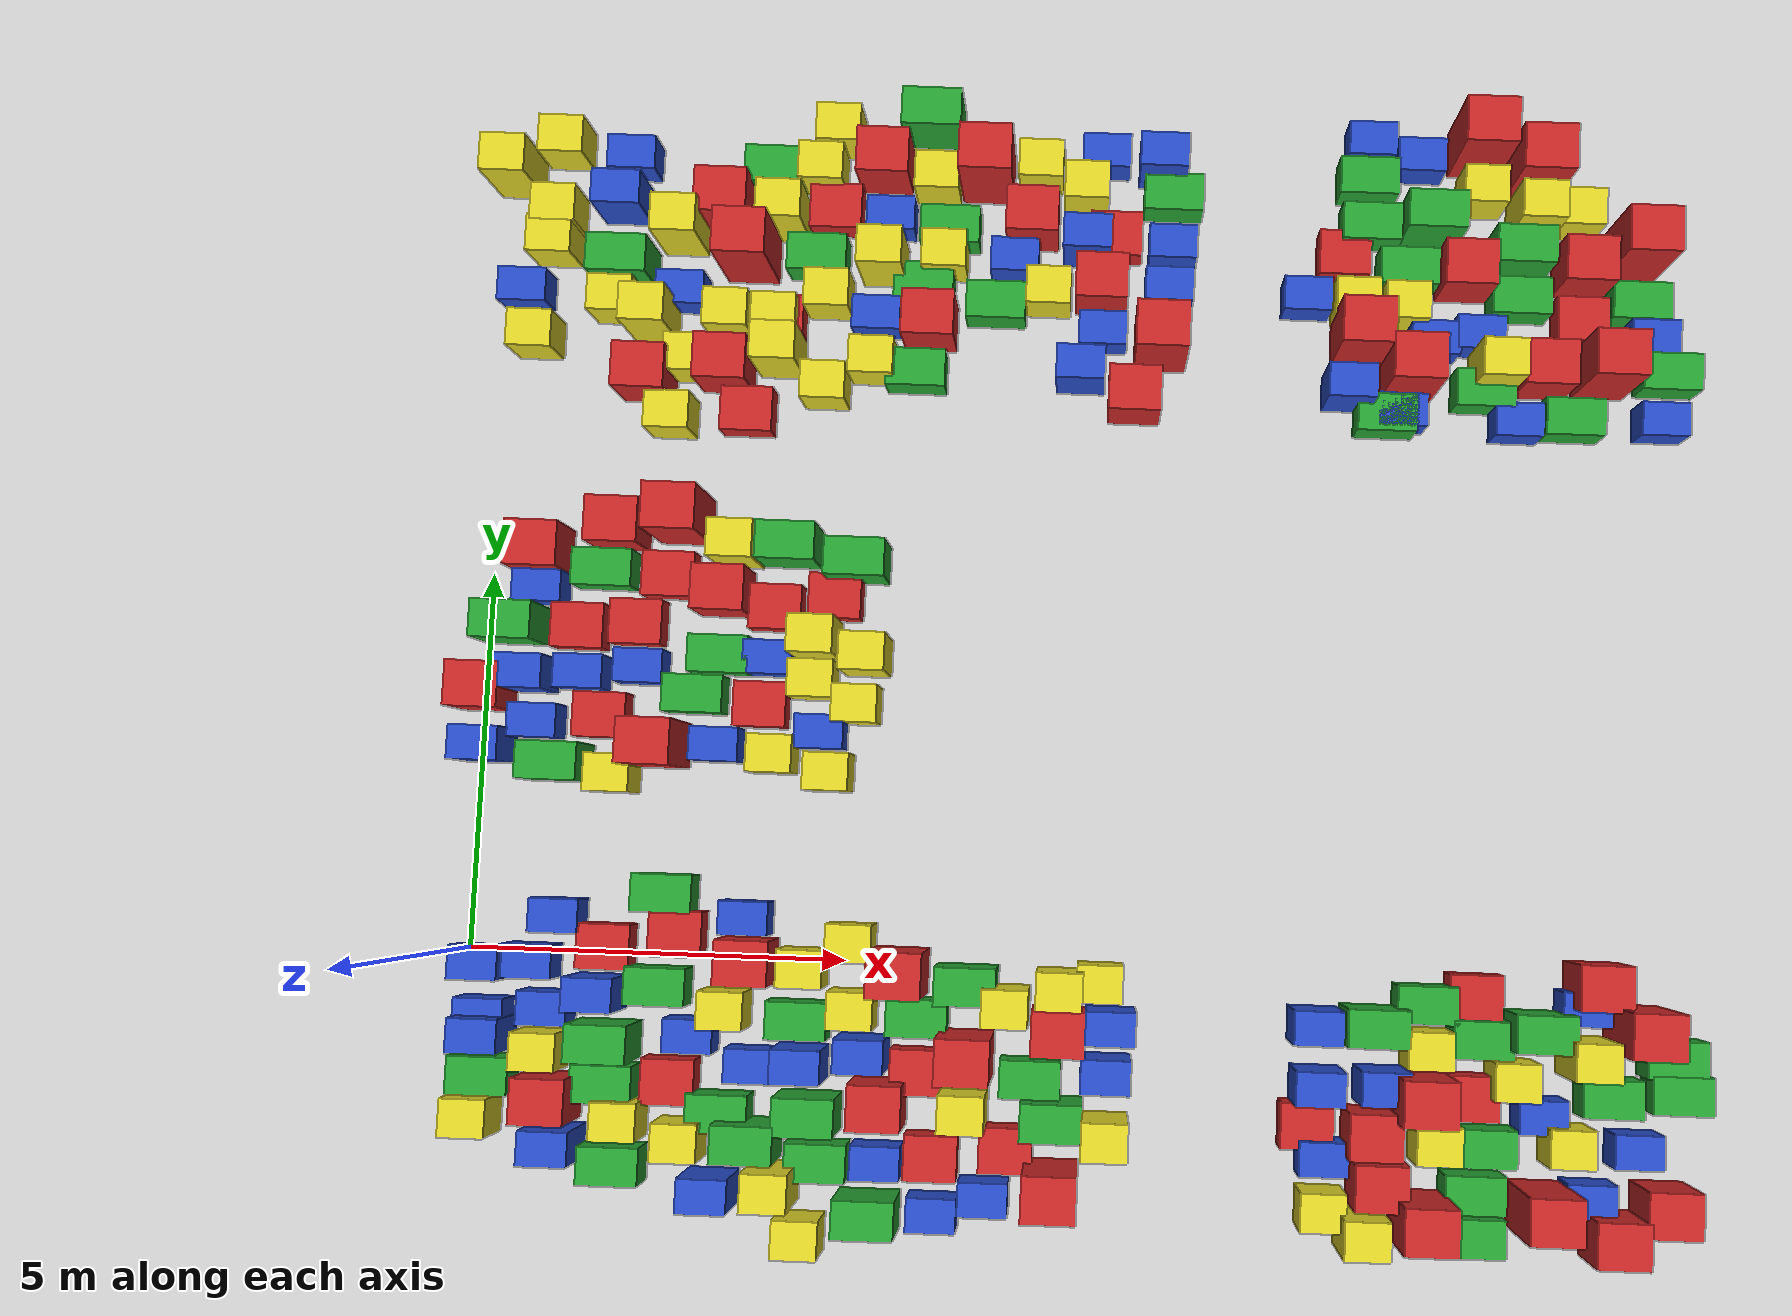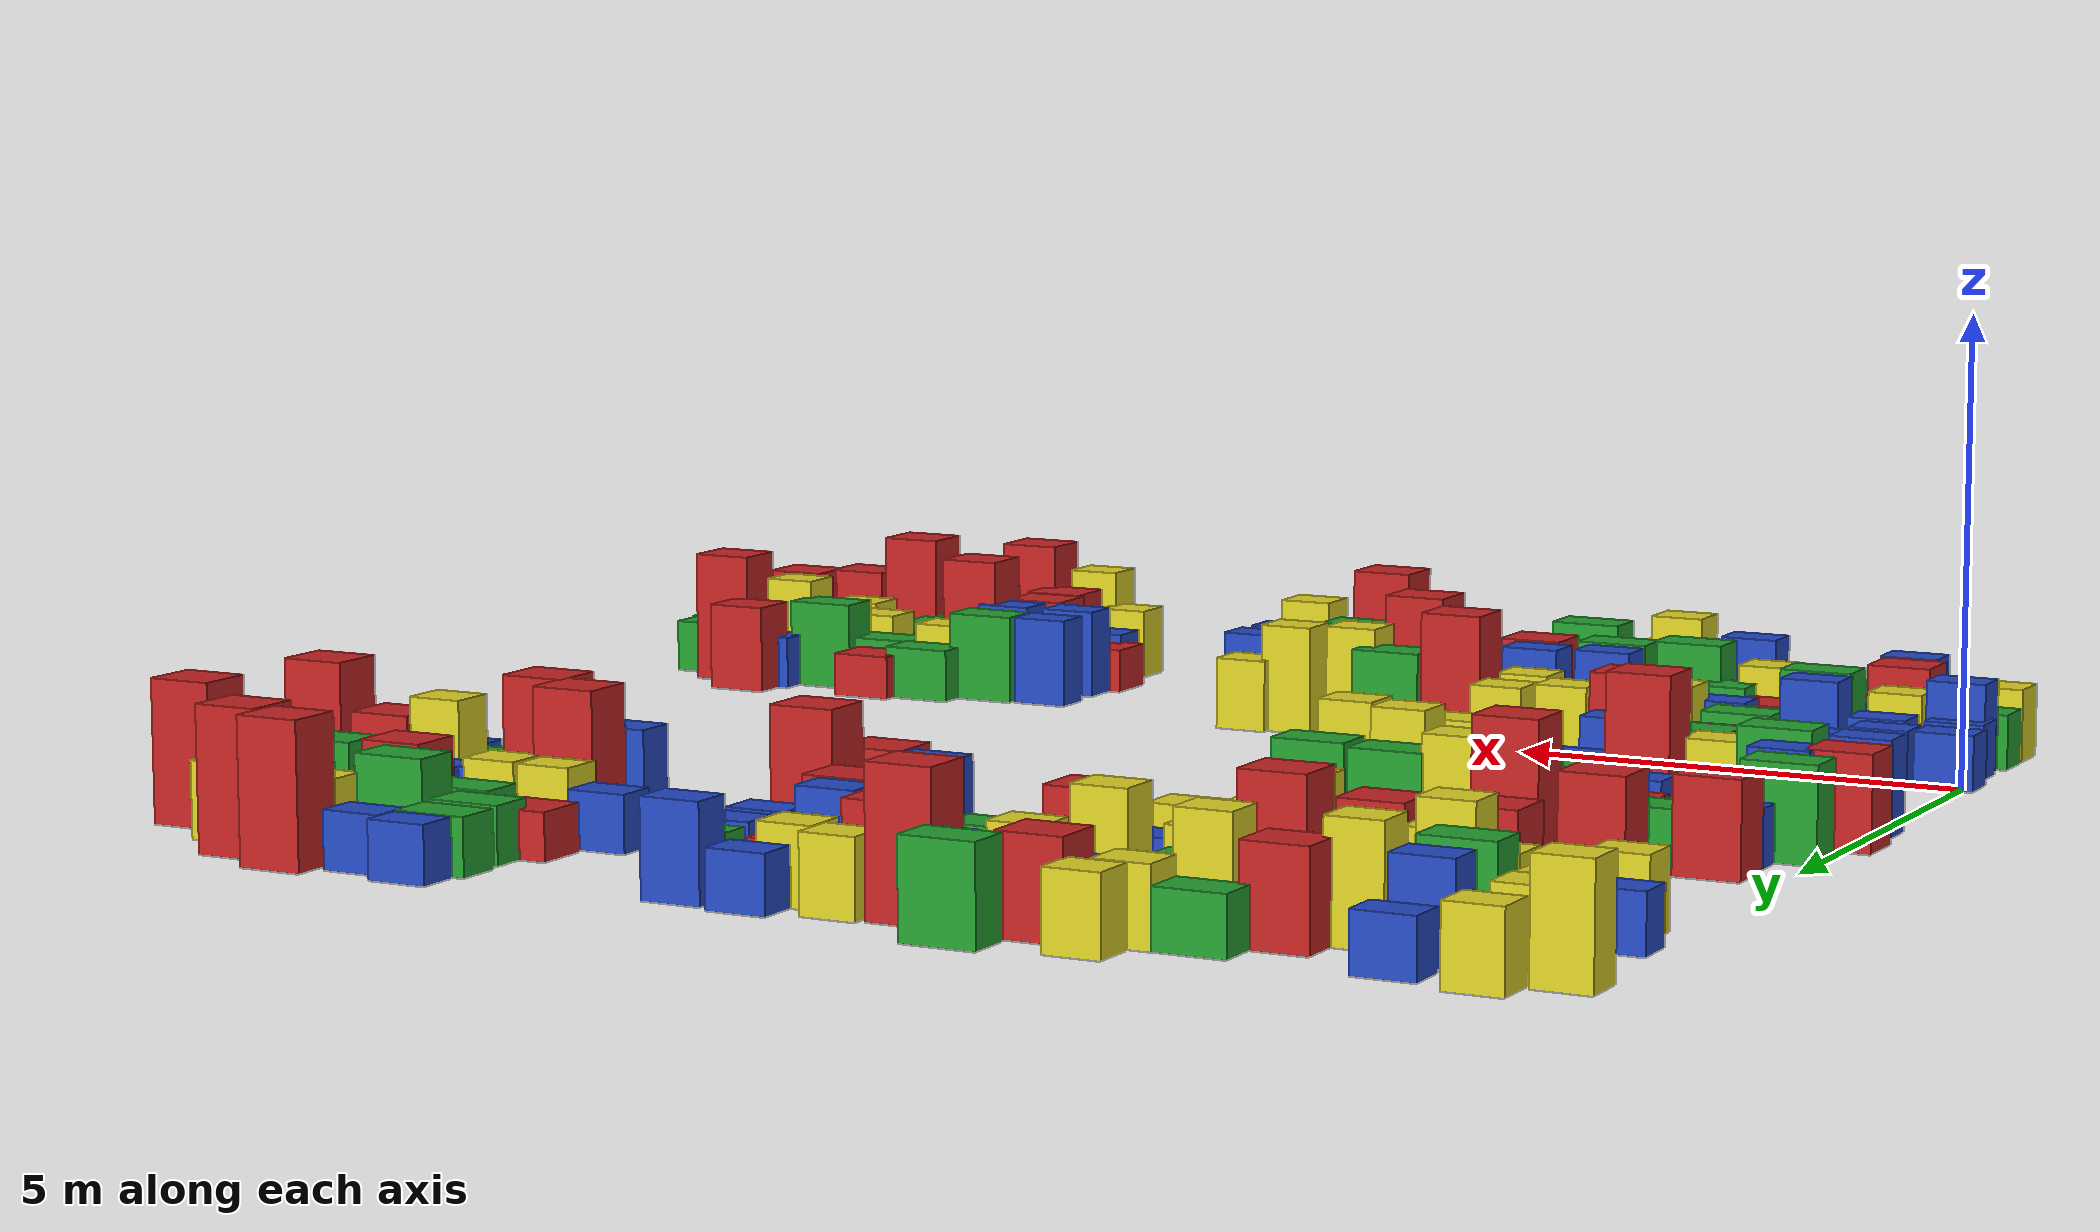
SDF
<?xml version="1.0" encoding="UTF-8"?>
<sdf version="1.4">
  <model name="baggage_group_D">
      <model name='baggage_A_0.5_0'>
        <include>
          <uri>model://baggage_A_0.5</uri>
          <pose>6.26543 -2.46376 0.249591 0 -0 0</pose>
        </include>
      </model>
      <model name='baggage_A_0.5_10'>
        <include>
          <uri>model://baggage_A_0.5</uri>
          <pose>7.2367 -2.3284 0.24962 0 -0 0</pose>
        </include>
      </model>
      <model name='baggage_A_0.5_13'>
        <include>
          <uri>model://baggage_A_0.5</uri>
          <pose>2.43636 5.05285 0.250044 0 -0 0</pose>
        </include>
      </model>
      <model name='baggage_A_0.5_14'>
        <include>
          <uri>model://baggage_A_0.5</uri>
          <pose>4.67139 4.83978 0.249865 0 -0 0</pose>
        </include>
      </model>
      <model name='baggage_A_0.5_17'>
        <include>
          <uri>model://baggage_A_0.5</uri>
          <pose>1.86196 0.098093 0.249707 0 -0 0</pose>
        </include>
      </model>
      <model name='baggage_A_0.5_19'>
        <include>
          <uri>model://baggage_A_0.5</uri>
          <pose>6.0358 -1.37193 0.249929 0 -0 0</pose>
        </include>
      </model>
      <model name='baggage_A_0.5_22'>
        <include>
          <uri>model://baggage_A_0.5</uri>
          <pose>2.04116 4.39802 0.24978 0 -0 0</pose>
        </include>
      </model>
      <model name='baggage_A_0.5_29'>
        <include>
          <uri>model://baggage_A_0.5</uri>
          <pose>2.80038 -1.61448 0.249803 0 -0 0</pose>
        </include>
      </model>
      <model name='baggage_A_0.5_33'>
        <include>
          <uri>model://baggage_A_0.5</uri>
          <pose>11.1414 -1.86136 0.249759 0 -0 0</pose>
        </include>
      </model>
      <model name='baggage_A_0.5_34'>
        <include>
          <uri>model://baggage_A_0.5</uri>
          <pose>4.42669 10.155 0.250487 0 -0 0</pose>
        </include>
      </model>
      <model name='baggage_A_0.5_36'>
        <include>
          <uri>model://baggage_A_0.5</uri>
          <pose>3.74295 3.35884 0.250092 0 -0 0</pose>
        </include>
      </model>
      <model name='baggage_A_0.5_38'>
        <include>
          <uri>model://baggage_A_0.5</uri>
          <pose>3.8838 4.6666 0.249811 0 -0 0</pose>
        </include>
      </model>
      <model name='baggage_A_0.5_39'>
        <include>
          <uri>model://baggage_A_0.5</uri>
          <pose>3.70914 8.5983 0.249886 0 -0 0</pose>
        </include>
      </model>
      <model name='baggage_A_0.5_4'>
        <include>
          <uri>model://baggage_A_0.5</uri>
          <pose>3.35624 7.32491 0.250063 0 -0 0</pose>
        </include>
      </model>
      <model name='baggage_A_0.5_40'>
        <include>
          <uri>model://baggage_A_0.5</uri>
          <pose>13.3126 -0.130646 0.249646 0 -0 0</pose>
        </include>
      </model>
      <model name='baggage_A_0.5_44'>
        <include>
          <uri>model://baggage_A_0.5</uri>
          <pose>13.2972 -1.43388 0.249622 0 -0 0</pose>
        </include>
      </model>
      <model name='baggage_A_0.5_46'>
        <include>
          <uri>model://baggage_A_0.5</uri>
          <pose>2.79553 0.301072 0.250117 0 -0 0</pose>
        </include>
      </model>
      <model name='baggage_A_0.5_47'>
        <include>
          <uri>model://baggage_A_0.5</uri>
          <pose>1.26699 4.31966 0.249949 0 -0 0</pose>
        </include>
      </model>
      <model name='baggage_A_0.5_48'>
        <include>
          <uri>model://baggage_A_0.5</uri>
          <pose>1.62736 3.14012 0.249833 0 -0 0</pose>
        </include>
      </model>
      <model name='baggage_A_0.5_49'>
        <include>
          <uri>model://baggage_A_0.5</uri>
          <pose>11.3391 9.77002 0.249869 0 -0 0</pose>
        </include>
      </model>
      <model name='baggage_A_0.5_5'>
        <include>
          <uri>model://baggage_A_0.5</uri>
          <pose>14.5721 8.97359 0.25049 0 -0 0</pose>
        </include>
      </model>
      <model name='baggage_A_0.5_8'>
        <include>
          <uri>model://baggage_A_0.5</uri>
          <pose>8.23951 9.91271 0.250259 0 -0 0</pose>
        </include>
      </model>
      <model name='baggage_A_1.0_10'>
        <include>
          <uri>model://baggage_A_1.0</uri>
          <pose>2.94014 10.1656 0.499822 0 -0 0</pose>
        </include>
      </model>
      <model name='baggage_A_1.0_13'>
        <include>
          <uri>model://baggage_A_1.0</uri>
          <pose>7.86668 -0.77323 0.500079 0 -0 0</pose>
        </include>
      </model>
      <model name='baggage_A_1.0_14'>
        <include>
          <uri>model://baggage_A_1.0</uri>
          <pose>14.0575 8.2505 0.500439 0 -0 0</pose>
        </include>
      </model>
      <model name='baggage_A_1.0_15'>
        <include>
          <uri>model://baggage_A_1.0</uri>
          <pose>8.55788 7.69446 0.500157 0 -0 0</pose>
        </include>
      </model>
      <model name='baggage_A_1.0_16'>
        <include>
          <uri>model://baggage_A_1.0</uri>
          <pose>11.9799 -1.9132 0.500256 0 -0 0</pose>
        </include>
      </model>
      <model name='baggage_A_1.0_17'>
        <include>
          <uri>model://baggage_A_1.0</uri>
          <pose>1.25002 -1.87093 0.500061 0 -0 0</pose>
        </include>
      </model>
      <model name='baggage_A_1.0_19'>
        <include>
          <uri>model://baggage_A_1.0</uri>
          <pose>14.5654 9.67124 0.500149 0 -0 0</pose>
        </include>
      </model>
      <model name='baggage_A_1.0_2'>
        <include>
          <uri>model://baggage_A_1.0</uri>
          <pose>5.07663 10.79 0.500243 0 -0 0</pose>
        </include>
      </model>
      <model name='baggage_A_1.0_23'>
        <include>
          <uri>model://baggage_A_1.0</uri>
          <pose>0.06114 3.45408 0.500435 0 -0 0</pose>
        </include>
      </model>
      <model name='baggage_A_1.0_25'>
        <include>
          <uri>model://baggage_A_1.0</uri>
          <pose>3.75392 -0.022818 0.500376 0 -0 0</pose>
        </include>
      </model>
      <model name='baggage_A_1.0_26'>
        <include>
          <uri>model://baggage_A_1.0</uri>
          <pose>1.74765 5.68835 0.500125 0 -0 0</pose>
        </include>
      </model>
      <model name='baggage_A_1.0_27'>
        <include>
          <uri>model://baggage_A_1.0</uri>
          <pose>7.10683 10.0643 0.499769 0 -0 0</pose>
        </include>
      </model>
      <model name='baggage_A_1.0_28'>
        <include>
          <uri>model://baggage_A_1.0</uri>
          <pose>5.77036 8.60826 0.499919 0 -0 0</pose>
        </include>
      </model>
      <model name='baggage_A_1.0_3'>
        <include>
          <uri>model://baggage_A_1.0</uri>
          <pose>15.8008 -2.74708 0.499669 0 -0 0</pose>
        </include>
      </model>
      <model name='baggage_A_1.0_35'>
        <include>
          <uri>model://baggage_A_1.0</uri>
          <pose>15.1485 -3.14639 0.500323 0 -0 0</pose>
        </include>
      </model>
      <model name='baggage_A_1.0_36'>
        <include>
          <uri>model://baggage_A_1.0</uri>
          <pose>1.97881 7.75334 0.500264 0 -0 0</pose>
        </include>
      </model>
      <model name='baggage_A_1.0_40'>
        <include>
          <uri>model://baggage_A_1.0</uri>
          <pose>12.9679 9.56183 0.500186 0 -0 0</pose>
        </include>
      </model>
      <model name='baggage_A_1.0_44'>
        <include>
          <uri>model://baggage_A_1.0</uri>
          <pose>8.06696 9.19307 0.499841 0 -0 0</pose>
        </include>
      </model>
      <model name='baggage_A_1.0_45'>
        <include>
          <uri>model://baggage_A_1.0</uri>
          <pose>3.04647 7.9173 0.499799 0 -0 0</pose>
        </include>
      </model>
      <model name='baggage_A_1.0_49'>
        <include>
          <uri>model://baggage_A_1.0</uri>
          <pose>3.18946 4.84223 0.500182 0 -0 0</pose>
        </include>
      </model>
      <model name='baggage_A_1.0_5'>
        <include>
          <uri>model://baggage_A_1.0</uri>
          <pose>0.71214 5.33384 0.499935 0 -0 0</pose>
        </include>
      </model>
      <model name='baggage_A_1.0_6'>
        <include>
          <uri>model://baggage_A_1.0</uri>
          <pose>5.54857 -1.7938 0.500326 0 -0 0</pose>
        </include>
      </model>
      <model name='baggage_A_1.0_7'>
        <include>
          <uri>model://baggage_A_1.0</uri>
          <pose>12.0629 -2.55244 0.500417 0 -0 0</pose>
        </include>
      </model>
      <model name='baggage_A_1.0_9'>
        <include>
          <uri>model://baggage_A_1.0</uri>
          <pose>14.8922 0.079418 0.500357 0 -0 0</pose>
        </include>
      </model>
      <model name='baggage_A_1.5_0'>
        <include>
          <uri>model://baggage_A_1.5</uri>
          <pose>13.1144 11.3235 0.749643 0 -0 0</pose>
        </include>
      </model>
      <model name='baggage_A_1.5_10'>
        <include>
          <uri>model://baggage_A_1.5</uri>
          <pose>7.83064 -2.76424 0.749633 0 -0 0</pose>
        </include>
      </model>
      <model name='baggage_A_1.5_11'>
        <include>
          <uri>model://baggage_A_1.5</uri>
          <pose>5.76849 -0.074128 0.749916 0 -0 0</pose>
        </include>
      </model>
      <model name='baggage_A_1.5_12'>
        <include>
          <uri>model://baggage_A_1.5</uri>
          <pose>2.44019 2.77564 0.7504 0 -0 0</pose>
        </include>
      </model>
      <model name='baggage_A_1.5_13'>
        <include>
          <uri>model://baggage_A_1.5</uri>
          <pose>15.4323 -0.470897 0.749757 0 -0 0</pose>
        </include>
      </model>
      <model name='baggage_A_1.5_16'>
        <include>
          <uri>model://baggage_A_1.5</uri>
          <pose>15.2636 9.94094 0.749638 0 -0 0</pose>
        </include>
      </model>
      <model name='baggage_A_1.5_18'>
        <include>
          <uri>model://baggage_A_1.5</uri>
          <pose>3.30674 9.46713 0.749838 0 -0 0</pose>
        </include>
      </model>
      <model name='baggage_A_1.5_23'>
        <include>
          <uri>model://baggage_A_1.5</uri>
          <pose>6.47452 10.709 0.74976 0 -0 0</pose>
        </include>
      </model>
      <model name='baggage_A_1.5_27'>
        <include>
          <uri>model://baggage_A_1.5</uri>
          <pose>13.8756 10.9908 0.749655 0 -0 0</pose>
        </include>
      </model>
      <model name='baggage_A_1.5_28'>
        <include>
          <uri>model://baggage_A_1.5</uri>
          <pose>11.5627 8.59469 0.749913 0 -0 0</pose>
        </include>
      </model>
      <model name='baggage_A_1.5_29'>
        <include>
          <uri>model://baggage_A_1.5</uri>
          <pose>12.2384 8.14285 0.750142 0 -0 0</pose>
        </include>
      </model>
      <model name='baggage_A_1.5_33'>
        <include>
          <uri>model://baggage_A_1.5</uri>
          <pose>12.5796 -1.41703 0.75003 0 -0 0</pose>
        </include>
      </model>
      <model name='baggage_A_1.5_36'>
        <include>
          <uri>model://baggage_A_1.5</uri>
          <pose>8.88645 8.43977 0.749677 0 -0 0</pose>
        </include>
      </model>
      <model name='baggage_A_1.5_40'>
        <include>
          <uri>model://baggage_A_1.5</uri>
          <pose>6.6746 -1.12238 0.749543 0 -0 0</pose>
        </include>
      </model>
      <model name='baggage_A_1.5_5'>
        <include>
          <uri>model://baggage_A_1.5</uri>
          <pose>2.5968 5.81041 0.749844 0 -0 0</pose>
        </include>
      </model>
      <model name='baggage_A_1.5_6'>
        <include>
          <uri>model://baggage_A_1.5</uri>
          <pose>14.1781 -2.79768 0.749922 0 -0 0</pose>
        </include>
      </model>
      <model name='baggage_A_1.5_8'>
        <include>
          <uri>model://baggage_A_1.5</uri>
          <pose>14.8608 8.28483 0.750081 0 -0 0</pose>
        </include>
      </model>
      <model name='baggage_A_1.5_9'>
        <include>
          <uri>model://baggage_A_1.5</uri>
          <pose>12.6198 -2.9794 0.7496 0 -0 0</pose>
        </include>
      </model>
      <model name='baggage_B_0.6_0'>
        <include>
          <uri>model://baggage_B_0.6</uri>
          <pose>3.69007 0.538933 0.3 0 -0 0</pose>
        </include>
      </model>
      <model name='baggage_B_0.6_11'>
        <include>
          <uri>model://baggage_B_0.6</uri>
          <pose>12.3409 11.1335 0.3 0 -0 0</pose>
        </include>
      </model>
      <model name='baggage_B_0.6_12'>
        <include>
          <uri>model://baggage_B_0.6</uri>
          <pose>6.30994 -3.16878 0.3 0 -0 0</pose>
        </include>
      </model>
      <model name='baggage_B_0.6_14'>
        <include>
          <uri>model://baggage_B_0.6</uri>
          <pose>10.8468 9.15923 0.3 0 -0 0</pose>
        </include>
      </model>
      <model name='baggage_B_0.6_2'>
        <include>
          <uri>model://baggage_B_0.6</uri>
          <pose>5.18338 10.0566 0.3 0 -0 0</pose>
        </include>
      </model>
      <model name='baggage_B_0.6_21'>
        <include>
          <uri>model://baggage_B_0.6</uri>
          <pose>4.55676 3.02236 0.3 0 -0 0</pose>
        </include>
      </model>
      <model name='baggage_B_0.6_22'>
        <include>
          <uri>model://baggage_B_0.6</uri>
          <pose>0.901034 -0.122514 0.3 0 -0 0</pose>
        </include>
      </model>
      <model name='baggage_B_0.6_26'>
        <include>
          <uri>model://baggage_B_0.6</uri>
          <pose>15.6719 7.62413 0.3 0 -0 0</pose>
        </include>
      </model>
      <model name='baggage_B_0.6_35'>
        <include>
          <uri>model://baggage_B_0.6</uri>
          <pose>13.7177 7.54429 0.3 0 -0 0</pose>
        </include>
      </model>
      <model name='baggage_B_0.6_36'>
        <include>
          <uri>model://baggage_B_0.6</uri>
          <pose>1.64019 10.7664 0.3 0 -0 0</pose>
        </include>
      </model>
      <model name='baggage_B_0.6_39'>
        <include>
          <uri>model://baggage_B_0.6</uri>
          <pose>2.39021 8.93044 0.3 0 -0 0</pose>
        </include>
      </model>
      <model name='baggage_B_0.6_4'>
        <include>
          <uri>model://baggage_B_0.6</uri>
          <pose>14.1904 -1.6285 0.3 0 -0 0</pose>
        </include>
      </model>
      <model name='baggage_B_0.6_40'>
        <include>
          <uri>model://baggage_B_0.6</uri>
          <pose>1.33626 3.70292 0.3 0 -0 0</pose>
        </include>
      </model>
      <model name='baggage_B_0.6_44'>
        <include>
          <uri>model://baggage_B_0.6</uri>
          <pose>11.6676 11.3337 0.3 0 -0 0</pose>
        </include>
      </model>
      <model name='baggage_B_0.6_46'>
        <include>
          <uri>model://baggage_B_0.6</uri>
          <pose>13.1865 8.71899 0.3 0 -0 0</pose>
        </include>
      </model>
      <model name='baggage_B_0.6_47'>
        <include>
          <uri>model://baggage_B_0.6</uri>
          <pose>0.767607 3.03085 0.3 0 -0 0</pose>
        </include>
      </model>
      <model name='baggage_B_0.6_49'>
        <include>
          <uri>model://baggage_B_0.6</uri>
          <pose>0.722521 4.83538 0.3 0 -0 0</pose>
        </include>
      </model>
      <model name='baggage_B_0.6_5'>
        <include>
          <uri>model://baggage_B_0.6</uri>
          <pose>14.8374 -2.67746 0.3 0 -0 0</pose>
        </include>
      </model>
      <model name='baggage_B_0.6_9'>
        <include>
          <uri>model://baggage_B_0.6</uri>
          <pose>6.88017 9.54866 0.3 0 -0 0</pose>
        </include>
      </model>
      <model name='baggage_B_0.6_11'>
        <include>
          <uri>model://baggage_B_0.6</uri>
          <pose>12.5764 8.62506 0.3 0 -0 0</pose>
        </include>
      </model>
      <model name='baggage_B_0.6_13'>
        <include>
          <uri>model://baggage_B_0.6</uri>
          <pose>0.198422 -0.168142 0.3 0 -0 0</pose>
        </include>
      </model>
      <model name='baggage_B_0.6_14'>
        <include>
          <uri>model://baggage_B_0.6</uri>
          <pose>8.10158 8.58616 0.3 0 -0 0</pose>
        </include>
      </model>
      <model name='baggage_B_0.6_15'>
        <include>
          <uri>model://baggage_B_0.6</uri>
          <pose>3.04885 -1.00915 0.3 0 -0 0</pose>
        </include>
      </model>
      <model name='baggage_B_0.6_19'>
        <include>
          <uri>model://baggage_B_0.6</uri>
          <pose>8.07114 11.0295 0.3 0 -0 0</pose>
        </include>
      </model>
      <model name='baggage_B_0.6_20'>
        <include>
          <uri>model://baggage_B_0.6</uri>
          <pose>5.04667 8.68218 0.3 0 -0 0</pose>
        </include>
      </model>
      <model name='baggage_B_0.6_21'>
        <include>
          <uri>model://baggage_B_0.6</uri>
          <pose>6.9676 -2.94811 0.3 0 -0 0</pose>
        </include>
      </model>
      <model name='baggage_B_0.6_22'>
        <include>
          <uri>model://baggage_B_0.6</uri>
          <pose>15.4346 -2.02199 0.3 0 -0 0</pose>
        </include>
      </model>
      <model name='baggage_B_0.6_27'>
        <include>
          <uri>model://baggage_B_0.6</uri>
          <pose>11.3573 -2.26727 0.3 0 -0 0</pose>
        </include>
      </model>
      <model name='baggage_B_0.6_29'>
        <include>
          <uri>model://baggage_B_0.6</uri>
          <pose>15.5288 8.74782 0.3 0 -0 0</pose>
        </include>
      </model>
      <model name='baggage_B_0.6_3'>
        <include>
          <uri>model://baggage_B_0.6</uri>
          <pose>0.308524 -0.839967 0.3 0 -0 0</pose>
        </include>
      </model>
      <model name='baggage_B_0.6_30'>
        <include>
          <uri>model://baggage_B_0.6</uri>
          <pose>2.12523 3.80475 0.3 0 -0 0</pose>
        </include>
      </model>
      <model name='baggage_B_0.6_32'>
        <include>
          <uri>model://baggage_B_0.6</uri>
          <pose>5.55622 -2.53883 0.3 0 -0 0</pose>
        </include>
      </model>
      <model name='baggage_B_0.6_33'>
        <include>
          <uri>model://baggage_B_0.6</uri>
          <pose>3.86494 -1.36281 0.3 0 -0 0</pose>
        </include>
      </model>
      <model name='baggage_B_0.6_37'>
        <include>
          <uri>model://baggage_B_0.6</uri>
          <pose>0.271629 8.88692 0.3 0 -0 0</pose>
        </include>
      </model>
      <model name='baggage_B_0.6_4'>
        <include>
          <uri>model://baggage_B_0.6</uri>
          <pose>1.21165 0.481628 0.3 0 -0 0</pose>
        </include>
      </model>
      <model name='baggage_B_0.6_40'>
        <include>
          <uri>model://baggage_B_0.6</uri>
          <pose>9.00772 9.80732 0.3 0 -0 0</pose>
        </include>
      </model>
      <model name='baggage_B_0.6_41'>
        <include>
          <uri>model://baggage_B_0.6</uri>
          <pose>14.7447 -0.224482 0.3 0 -0 0</pose>
        </include>
      </model>
      <model name='baggage_B_0.6_42'>
        <include>
          <uri>model://baggage_B_0.6</uri>
          <pose>1.13132 -0.723509 0.3 0 -0 0</pose>
        </include>
      </model>
      <model name='baggage_B_0.6_44'>
        <include>
          <uri>model://baggage_B_0.6</uri>
          <pose>12.163 7.62812 0.3 0 -0 0</pose>
        </include>
      </model>
      <model name='baggage_B_0.6_46'>
        <include>
          <uri>model://baggage_B_0.6</uri>
          <pose>8.97728 9.22323 0.3 0 -0 0</pose>
        </include>
      </model>
      <model name='baggage_B_0.6_6'>
        <include>
          <uri>model://baggage_B_0.6</uri>
          <pose>3.1779 2.80451 0.3 0 -0 0</pose>
        </include>
      </model>
      <model name='baggage_B_0.6_7'>
        <include>
          <uri>model://baggage_B_0.6</uri>
          <pose>3.8292 3.98197 0.3 0 -0 0</pose>
        </include>
      </model>
      <model name='baggage_B_1.0_0'>
        <include>
          <uri>model://baggage_B_1.0</uri>
          <pose>11.2512 -1.33279 0.499893 0 -0 0</pose>
        </include>
      </model>
      <model name='baggage_B_1.0_12'>
        <include>
          <uri>model://baggage_B_1.0</uri>
          <pose>1.8064 -0.497238 0.500142 0 -0 0</pose>
        </include>
      </model>
      <model name='baggage_B_1.0_15'>
        <include>
          <uri>model://baggage_B_1.0</uri>
          <pose>4.51567 -1.31017 0.499507 0 -0 0</pose>
        </include>
      </model>
      <model name='baggage_B_1.0_16'>
        <include>
          <uri>model://baggage_B_1.0</uri>
          <pose>3.41289 -2.97147 0.49999 0 -0 0</pose>
        </include>
      </model>
      <model name='baggage_B_1.0_18'>
        <include>
          <uri>model://baggage_B_1.0</uri>
          <pose>11.2098 -0.562731 0.500107 0 -0 0</pose>
        </include>
      </model>
      <model name='baggage_B_1.0_23'>
        <include>
          <uri>model://baggage_B_1.0</uri>
          <pose>11.4352 7.90468 0.500349 0 -0 0</pose>
        </include>
      </model>
      <model name='baggage_B_1.0_27'>
        <include>
          <uri>model://baggage_B_1.0</uri>
          <pose>0.133151 2.69036 0.500155 0 -0 0</pose>
        </include>
      </model>
      <model name='baggage_B_1.0_28'>
        <include>
          <uri>model://baggage_B_1.0</uri>
          <pose>7.8547 9.7882 0.499781 0 -0 0</pose>
        </include>
      </model>
      <model name='baggage_B_1.0_29'>
        <include>
          <uri>model://baggage_B_1.0</uri>
          <pose>0.366062 -1.06866 0.499624 0 -0 0</pose>
        </include>
      </model>
      <model name='baggage_B_1.0_3'>
        <include>
          <uri>model://baggage_B_1.0</uri>
          <pose>8.84494 10.9308 0.4999 0 -0 0</pose>
        </include>
      </model>
      <model name='baggage_B_1.0_32'>
        <include>
          <uri>model://baggage_B_1.0</uri>
          <pose>1.35822 -2.45377 0.500012 0 -0 0</pose>
        </include>
      </model>
      <model name='baggage_B_1.0_33'>
        <include>
          <uri>model://baggage_B_1.0</uri>
          <pose>5.3183 -1.15227 0.499892 0 -0 0</pose>
        </include>
      </model>
      <model name='baggage_B_1.0_34'>
        <include>
          <uri>model://baggage_B_1.0</uri>
          <pose>8.53799 -0.674083 0.500363 0 -0 0</pose>
        </include>
      </model>
      <model name='baggage_B_1.0_37'>
        <include>
          <uri>model://baggage_B_1.0</uri>
          <pose>12.0967 -1.30499 0.500296 0 -0 0</pose>
        </include>
      </model>
      <model name='baggage_B_1.0_38'>
        <include>
          <uri>model://baggage_B_1.0</uri>
          <pose>1.55013 10.1487 0.499581 0 -0 0</pose>
        </include>
      </model>
      <model name='baggage_B_1.0_44'>
        <include>
          <uri>model://baggage_B_1.0</uri>
          <pose>8.49553 -1.28646 0.499664 0 -0 0</pose>
        </include>
      </model>
      <model name='baggage_B_1.0_48'>
        <include>
          <uri>model://baggage_B_1.0</uri>
          <pose>0.643648 3.64885 0.500053 0 -0 0</pose>
        </include>
      </model>
      <model name='baggage_B_1.0_7'>
        <include>
          <uri>model://baggage_B_1.0</uri>
          <pose>7.82622 8.01382 0.500055 0 -0 0</pose>
        </include>
      </model>
      <model name='baggage_C_0.8_0'>
        <include>
          <uri>model://baggage_C_0.8</uri>
          <pose>0.67024 9.97166 0.4 0 -0 0</pose>
        </include>
      </model>
      <model name='baggage_C_0.8_11'>
        <include>
          <uri>model://baggage_C_0.8</uri>
          <pose>7.1931 10.8223 0.4 0 -0 0</pose>
        </include>
      </model>
      <model name='baggage_C_0.8_12'>
        <include>
          <uri>model://baggage_C_0.8</uri>
          <pose>1.83663 2.37332 0.4 0 -0 0</pose>
        </include>
      </model>
      <model name='baggage_C_0.8_13'>
        <include>
          <uri>model://baggage_C_0.8</uri>
          <pose>2.18545 -2.1151 0.4 0 -0 0</pose>
        </include>
      </model>
      <model name='baggage_C_0.8_16'>
        <include>
          <uri>model://baggage_C_0.8</uri>
          <pose>13.1817 10.6982 0.4 0 -0 0</pose>
        </include>
      </model>
      <model name='baggage_C_0.8_19'>
        <include>
          <uri>model://baggage_C_0.8</uri>
          <pose>12.687 -0.817467 0.4 0 -0 0</pose>
        </include>
      </model>
      <model name='baggage_C_0.8_23'>
        <include>
          <uri>model://baggage_C_0.8</uri>
          <pose>12.1658 9.06728 0.4 0 -0 0</pose>
        </include>
      </model>
      <model name='baggage_C_0.8_26'>
        <include>
          <uri>model://baggage_C_0.8</uri>
          <pose>11.3432 -2.91135 0.4 0 -0 0</pose>
        </include>
      </model>
      <model name='baggage_C_0.8_27'>
        <include>
          <uri>model://baggage_C_0.8</uri>
          <pose>4.44483 11.2187 0.4 0 -0 0</pose>
        </include>
      </model>
      <model name='baggage_C_0.8_3'>
        <include>
          <uri>model://baggage_C_0.8</uri>
          <pose>4.38771 8.94769 0.4 0 -0 0</pose>
        </include>
      </model>
      <model name='baggage_C_0.8_31'>
        <include>
          <uri>model://baggage_C_0.8</uri>
          <pose>13.8104 -1.1755 0.4 0 -0 0</pose>
        </include>
      </model>
      <model name='baggage_C_0.8_32'>
        <include>
          <uri>model://baggage_C_0.8</uri>
          <pose>7.82062 10.5494 0.4 0 -0 0</pose>
        </include>
      </model>
      <model name='baggage_C_0.8_34'>
        <include>
          <uri>model://baggage_C_0.8</uri>
          <pose>4.59136 -3.50974 0.4 0 -0 0</pose>
        </include>
      </model>
      <model name='baggage_C_0.8_37'>
        <include>
          <uri>model://baggage_C_0.8</uri>
          <pose>0.721212 10.9146 0.4 0 -0 0</pose>
        </include>
      </model>
      <model name='baggage_C_0.8_39'>
        <include>
          <uri>model://baggage_C_0.8</uri>
          <pose>3.69611 8.5958 0.4 0 -0 0</pose>
        </include>
      </model>
      <model name='baggage_C_0.8_4'>
        <include>
          <uri>model://baggage_C_0.8</uri>
          <pose>12.8194 -2.02279 0.4 0 -0 0</pose>
        </include>
      </model>
      <model name='baggage_C_0.8_43'>
        <include>
          <uri>model://baggage_C_0.8</uri>
          <pose>5.15866 -0.59211 0.4 0 -0 0</pose>
        </include>
      </model>
      <model name='baggage_C_0.8_44'>
        <include>
          <uri>model://baggage_C_0.8</uri>
          <pose>5.02547 3.40263 0.4 0 -0 0</pose>
        </include>
      </model>
      <model name='baggage_C_0.8_46'>
        <include>
          <uri>model://baggage_C_0.8</uri>
          <pose>4.6947 2.49389 0.4 0 -0 0</pose>
        </include>
      </model>
      <model name='baggage_C_0.8_6'>
        <include>
          <uri>model://baggage_C_0.8</uri>
          <pose>2.5571 8.00022 0.4 0 -0 0</pose>
        </include>
      </model>
      <model name='baggage_C_0.8_7'>
        <include>
          <uri>model://baggage_C_0.8</uri>
          <pose>4.22993 10.6812 0.4 0 -0 0</pose>
        </include>
      </model>
      <model name='baggage_C_0.8_8'>
        <include>
          <uri>model://baggage_C_0.8</uri>
          <pose>1.0985 -1.26565 0.4 0 -0 0</pose>
        </include>
      </model>
      <model name='baggage_C_0.8_11'>
        <include>
          <uri>model://baggage_C_0.8</uri>
          <pose>5.09871 0.27381 0.4 0 -0 0</pose>
        </include>
      </model>
      <model name='baggage_C_0.8_12'>
        <include>
          <uri>model://baggage_C_0.8</uri>
          <pose>1.49957 8.77355 0.4 0 -0 0</pose>
        </include>
      </model>
      <model name='baggage_C_0.8_13'>
        <include>
          <uri>model://baggage_C_0.8</uri>
          <pose>8.38068 -0.123605 0.4 0 -0 0</pose>
        </include>
      </model>
      <model name='baggage_C_0.8_16'>
        <include>
          <uri>model://baggage_C_0.8</uri>
          <pose>3.04707 8.63248 0.4 0 -0 0</pose>
        </include>
      </model>
      <model name='baggage_C_0.8_17'>
        <include>
          <uri>model://baggage_C_0.8</uri>
          <pose>2.98237 -2.35114 0.4 0 -0 0</pose>
        </include>
      </model>
      <model name='baggage_C_0.8_2'>
        <include>
          <uri>model://baggage_C_0.8</uri>
          <pose>0.251174 -2.13466 0.4 0 -0 0</pose>
        </include>
      </model>
      <model name='baggage_C_0.8_22'>
        <include>
          <uri>model://baggage_C_0.8</uri>
          <pose>5.79786 10.6121 0.4 0 -0 0</pose>
        </include>
      </model>
      <model name='baggage_C_0.8_23'>
        <include>
          <uri>model://baggage_C_0.8</uri>
          <pose>3.48413 -0.650264 0.4 0 -0 0</pose>
        </include>
      </model>
      <model name='baggage_C_0.8_24'>
        <include>
          <uri>model://baggage_C_0.8</uri>
          <pose>0.458139 8.24668 0.4 0 -0 0</pose>
        </include>
      </model>
      <model name='baggage_C_0.8_3'>
        <include>
          <uri>model://baggage_C_0.8</uri>
          <pose>14.5319 -1.9921 0.4 0 -0 0</pose>
        </include>
      </model>
      <model name='baggage_C_0.8_30'>
        <include>
          <uri>model://baggage_C_0.8</uri>
          <pose>11.5021 9.09537 0.4 0 -0 0</pose>
        </include>
      </model>
      <model name='baggage_C_0.8_35'>
        <include>
          <uri>model://baggage_C_0.8</uri>
          <pose>2.34677 7.21517 0.4 0 -0 0</pose>
        </include>
      </model>
      <model name='baggage_C_0.8_37'>
        <include>
          <uri>model://baggage_C_0.8</uri>
          <pose>0.639687 9.54214 0.4 0 -0 0</pose>
        </include>
      </model>
      <model name='baggage_C_0.8_38'>
        <include>
          <uri>model://baggage_C_0.8</uri>
          <pose>7.35564 9.08985 0.4 0 -0 0</pose>
        </include>
      </model>
      <model name='baggage_C_0.8_4'>
        <include>
          <uri>model://baggage_C_0.8</uri>
          <pose>14.4851 10.4356 0.4 0 -0 0</pose>
        </include>
      </model>
      <model name='baggage_C_0.8_40'>
        <include>
          <uri>model://baggage_C_0.8</uri>
          <pose>5.93377 9.54354 0.4 0 -0 0</pose>
        </include>
      </model>
      <model name='baggage_C_0.8_41'>
        <include>
          <uri>model://baggage_C_0.8</uri>
          <pose>4.39698 7.69332 0.4 0 -0 0</pose>
        </include>
      </model>
      <model name='baggage_C_0.8_47'>
        <include>
          <uri>model://baggage_C_0.8</uri>
          <pose>4.48116 -0.075645 0.4 0 -0 0</pose>
        </include>
      </model>
      <model name='baggage_C_0.8_48'>
        <include>
          <uri>model://baggage_C_0.8</uri>
          <pose>3.94324 2.70346 0.4 0 -0 0</pose>
        </include>
      </model>
      <model name='baggage_C_0.8_6'>
        <include>
          <uri>model://baggage_C_0.8</uri>
          <pose>4.43262 3.71279 0.4 0 -0 0</pose>
        </include>
      </model>
      <model name='baggage_C_0.8_8'>
        <include>
          <uri>model://baggage_C_0.8</uri>
          <pose>5.02203 8.05738 0.4 0 -0 0</pose>
        </include>
      </model>
      <model name='baggage_C_1.2_0'>
        <include>
          <uri>model://baggage_C_1.2</uri>
          <pose>7.17335 -0.459526 0.599666 0 -0 0</pose>
        </include>
      </model>
      <model name='baggage_C_1.2_14'>
        <include>
          <uri>model://baggage_C_1.2</uri>
          <pose>2.37341 9.76695 0.599819 0 -0 0</pose>
        </include>
      </model>
      <model name='baggage_C_1.2_16'>
        <include>
          <uri>model://baggage_C_1.2</uri>
          <pose>5.13561 4.05713 0.600318 0 -0 0</pose>
        </include>
      </model>
      <model name='baggage_C_1.2_19'>
        <include>
          <uri>model://baggage_C_1.2</uri>
          <pose>6.67042 -1.80778 0.600356 0 -0 0</pose>
        </include>
      </model>
      <model name='baggage_C_1.2_2'>
        <include>
          <uri>model://baggage_C_1.2</uri>
          <pose>5.11085 9.43702 0.600052 0 -0 0</pose>
        </include>
      </model>
      <model name='baggage_C_1.2_20'>
        <include>
          <uri>model://baggage_C_1.2</uri>
          <pose>4.22856 -2.87264 0.60044 0 -0 0</pose>
        </include>
      </model>
      <model name='baggage_C_1.2_21'>
        <include>
          <uri>model://baggage_C_1.2</uri>
          <pose>3.74973 10.0116 0.599916 0 -0 0</pose>
        </include>
      </model>
      <model name='baggage_C_1.2_22'>
        <include>
          <uri>model://baggage_C_1.2</uri>
          <pose>8.5045 -2.07752 0.599613 0 -0 0</pose>
        </include>
      </model>
      <model name='baggage_C_1.2_28'>
        <include>
          <uri>model://baggage_C_1.2</uri>
          <pose>2.02345 8.54911 0.599903 0 -0 0</pose>
        </include>
      </model>
      <model name='baggage_C_1.2_31'>
        <include>
          <uri>model://baggage_C_1.2</uri>
          <pose>4.45383 4.25964 0.600219 0 -0 0</pose>
        </include>
      </model>
      <model name='baggage_C_1.2_34'>
        <include>
          <uri>model://baggage_C_1.2</uri>
          <pose>3.34933 5.46822 0.600262 0 -0 0</pose>
        </include>
      </model>
      <model name='baggage_C_1.2_36'>
        <include>
          <uri>model://baggage_C_1.2</uri>
          <pose>13.4023 8.24375 0.599723 0 -0 0</pose>
        </include>
      </model>
      <model name='baggage_C_1.2_37'>
        <include>
          <uri>model://baggage_C_1.2</uri>
          <pose>14.7483 -0.848958 0.599608 0 -0 0</pose>
        </include>
      </model>
      <model name='baggage_C_1.2_38'>
        <include>
          <uri>model://baggage_C_1.2</uri>
          <pose>3.76945 8.10559 0.599611 0 -0 0</pose>
        </include>
      </model>
      <model name='baggage_C_1.2_45'>
        <include>
          <uri>model://baggage_C_1.2</uri>
          <pose>7.86157 -0.215089 0.59971 0 -0 0</pose>
        </include>
      </model>
      <model name='baggage_C_1.2_5'>
        <include>
          <uri>model://baggage_C_1.2</uri>
          <pose>13.879 10.385 0.599944 0 -0 0</pose>
        </include>
      </model>
      <model name='baggage_C_1.2_6'>
        <include>
          <uri>model://baggage_C_1.2</uri>
          <pose>11.8654 -3.16881 0.600203 0 -0 0</pose>
        </include>
      </model>
      <model name='baggage_C_1.2_9'>
        <include>
          <uri>model://baggage_C_1.2</uri>
          <pose>0.076079 10.4911 0.599693 0 -0 0</pose>
        </include>
      </model>
      <model name='baggage_D_0.6_0'>
        <include>
          <uri>model://baggage_D_0.6</uri>
          <pose>5.66705 9.14027 0.3 0 -0 0</pose>
        </include>
      </model>
      <model name='baggage_D_0.6_14'>
        <include>
          <uri>model://baggage_D_0.6</uri>
          <pose>1.5681 5.09902 0.3 0 -0 0</pose>
        </include>
      </model>
      <model name='baggage_D_0.6_17'>
        <include>
          <uri>model://baggage_D_0.6</uri>
          <pose>7.52064 -1.39829 0.3 0 -0 0</pose>
        </include>
      </model>
      <model name='baggage_D_0.6_19'>
        <include>
          <uri>model://baggage_D_0.6</uri>
          <pose>4.20957 9.48197 0.3 0 -0 0</pose>
        </include>
      </model>
      <model name='baggage_D_0.6_21'>
        <include>
          <uri>model://baggage_D_0.6</uri>
          <pose>4.78388 -2.56624 0.3 0 -0 0</pose>
        </include>
      </model>
      <model name='baggage_D_0.6_22'>
        <include>
          <uri>model://baggage_D_0.6</uri>
          <pose>4.44588 -0.761704 0.3 0 -0 0</pose>
        </include>
      </model>
      <model name='baggage_D_0.6_25'>
        <include>
          <uri>model://baggage_D_0.6</uri>
          <pose>2.8609 3.46273 0.3 0 -0 0</pose>
        </include>
      </model>
      <model name='baggage_D_0.6_27'>
        <include>
          <uri>model://baggage_D_0.6</uri>
          <pose>13.4598 -2.05495 0.3 0 -0 0</pose>
        </include>
      </model>
      <model name='baggage_D_0.6_30'>
        <include>
          <uri>model://baggage_D_0.6</uri>
          <pose>6.01113 -0.668914 0.3 0 -0 0</pose>
        </include>
      </model>
      <model name='baggage_D_0.6_35'>
        <include>
          <uri>model://baggage_D_0.6</uri>
          <pose>1.95729 -1.6682 0.3 0 -0 0</pose>
        </include>
      </model>
      <model name='baggage_D_0.6_36'>
        <include>
          <uri>model://baggage_D_0.6</uri>
          <pose>12.6639 -0.244234 0.3 0 -0 0</pose>
        </include>
      </model>
      <model name='baggage_D_0.6_37'>
        <include>
          <uri>model://baggage_D_0.6</uri>
          <pose>15.9971 -1.28407 0.3 0 -0 0</pose>
        </include>
      </model>
      <model name='baggage_D_0.6_42'>
        <include>
          <uri>model://baggage_D_0.6</uri>
          <pose>3.16733 4.00028 0.3 0 -0 0</pose>
        </include>
      </model>
      <model name='baggage_D_0.6_46'>
        <include>
          <uri>model://baggage_D_0.6</uri>
          <pose>2.60264 0.825864 0.3 0 -0 0</pose>
        </include>
      </model>
      <model name='baggage_D_0.6_48'>
        <include>
          <uri>model://baggage_D_0.6</uri>
          <pose>12.2063 9.59457 0.3 0 -0 0</pose>
        </include>
      </model>
      <model name='baggage_D_0.6_5'>
        <include>
          <uri>model://baggage_D_0.6</uri>
          <pose>11.6362 10.8191 0.3 0 -0 0</pose>
        </include>
      </model>
      <model name='baggage_D_0.6_6'>
        <include>
          <uri>model://baggage_D_0.6</uri>
          <pose>5.60831 7.95334 0.3 0 -0 0</pose>
        </include>
      </model>
      <model name='baggage_D_0.6_8'>
        <include>
          <uri>model://baggage_D_0.6</uri>
          <pose>3.57898 10.6701 0.3 0 -0 0</pose>
        </include>
      </model>
      <model name='baggage_D_0.6_0'>
        <include>
          <uri>model://baggage_D_0.6</uri>
          <pose>8.99784 10.4889 0.3 0 -0 0</pose>
        </include>
      </model>
      <model name='baggage_D_0.6_13'>
        <include>
          <uri>model://baggage_D_0.6</uri>
          <pose>13.7269 9.24225 0.3 0 -0 0</pose>
        </include>
      </model>
      <model name='baggage_D_0.6_15'>
        <include>
          <uri>model://baggage_D_0.6</uri>
          <pose>15.9252 -0.833163 0.3 0 -0 0</pose>
        </include>
      </model>
      <model name='baggage_D_0.6_16'>
        <include>
          <uri>model://baggage_D_0.6</uri>
          <pose>11.6849 10.1892 0.3 0 -0 0</pose>
        </include>
      </model>
      <model name='baggage_D_0.6_17'>
        <include>
          <uri>model://baggage_D_0.6</uri>
          <pose>13.3317 -3.19474 0.3 0 -0 0</pose>
        </include>
      </model>
      <model name='baggage_D_0.6_18'>
        <include>
          <uri>model://baggage_D_0.6</uri>
          <pose>6.64758 8.91608 0.3 0 -0 0</pose>
        </include>
      </model>
      <model name='baggage_D_0.6_21'>
        <include>
          <uri>model://baggage_D_0.6</uri>
          <pose>13.2627 7.96183 0.3 0 -0 0</pose>
        </include>
      </model>
      <model name='baggage_D_0.6_22'>
        <include>
          <uri>model://baggage_D_0.6</uri>
          <pose>14.4676 7.61269 0.3 0 -0 0</pose>
        </include>
      </model>
      <model name='baggage_D_0.6_23'>
        <include>
          <uri>model://baggage_D_0.6</uri>
          <pose>0.349058 -1.61401 0.3 0 -0 0</pose>
        </include>
      </model>
      <model name='baggage_D_0.6_24'>
        <include>
          <uri>model://baggage_D_0.6</uri>
          <pose>2.58241 -0.388441 0.3 0 -0 0</pose>
        </include>
      </model>
      <model name='baggage_D_0.6_33'>
        <include>
          <uri>model://baggage_D_0.6</uri>
          <pose>2.10819 -2.70419 0.3 0 -0 0</pose>
        </include>
      </model>
      <model name='baggage_D_0.6_36'>
        <include>
          <uri>model://baggage_D_0.6</uri>
          <pose>11.949 7.57628 0.3 0 -0 0</pose>
        </include>
      </model>
      <model name='baggage_D_0.6_38'>
        <include>
          <uri>model://baggage_D_0.6</uri>
          <pose>13.3282 -2.64765 0.3 0 -0 0</pose>
        </include>
      </model>
      <model name='baggage_D_0.6_40'>
        <include>
          <uri>model://baggage_D_0.6</uri>
          <pose>13.4 -0.667796 0.3 0 -0 0</pose>
        </include>
      </model>
      <model name='baggage_D_0.6_42'>
        <include>
          <uri>model://baggage_D_0.6</uri>
          <pose>15.3391 9.23297 0.3 0 -0 0</pose>
        </include>
      </model>
      <model name='baggage_D_0.6_43'>
        <include>
          <uri>model://baggage_D_0.6</uri>
          <pose>15.7547 8.27735 0.3 0 -0 0</pose>
        </include>
      </model>
      <model name='baggage_D_0.6_45'>
        <include>
          <uri>model://baggage_D_0.6</uri>
          <pose>15.094 -1.36219 0.3 0 -0 0</pose>
        </include>
      </model>
      <model name='baggage_D_0.6_46'>
        <include>
          <uri>model://baggage_D_0.6</uri>
          <pose>3.47383 -1.98751 0.3 0 -0 0</pose>
        </include>
      </model>
      <model name='baggage_D_0.6_7'>
        <include>
          <uri>model://baggage_D_0.6</uri>
          <pose>5.98966 9.936 0.3 0 -0 0</pose>
        </include>
      </model>
      <model name='baggage_D_1.0_1'>
        <include>
          <uri>model://baggage_D_1.0</uri>
          <pose>14.1351 -0.534316 0.499876 0 -0 0</pose>
        </include>
      </model>
      <model name='baggage_D_1.0_12'>
        <include>
          <uri>model://baggage_D_1.0</uri>
          <pose>5.47223 -3.19192 0.500226 0 -0 0</pose>
        </include>
      </model>
      <model name='baggage_D_1.0_13'>
        <include>
          <uri>model://baggage_D_1.0</uri>
          <pose>1.09438 2.49522 0.499941 0 -0 0</pose>
        </include>
      </model>
      <model name='baggage_D_1.0_15'>
        <include>
          <uri>model://baggage_D_1.0</uri>
          <pose>3.8821 -2.31525 0.500235 0 -0 0</pose>
        </include>
      </model>
      <model name='baggage_D_1.0_17'>
        <include>
          <uri>model://baggage_D_1.0</uri>
          <pose>11.9765 -0.542556 0.499951 0 -0 0</pose>
        </include>
      </model>
      <model name='baggage_D_1.0_18'>
        <include>
          <uri>model://baggage_D_1.0</uri>
          <pose>12.5086 10.2636 0.500185 0 -0 0</pose>
        </include>
      </model>
      <model name='baggage_D_1.0_20'>
        <include>
          <uri>model://baggage_D_1.0</uri>
          <pose>7.81492 -1.89594 0.499505 0 -0 0</pose>
        </include>
      </model>
      <model name='baggage_D_1.0_29'>
        <include>
          <uri>model://baggage_D_1.0</uri>
          <pose>4.03377 5.49289 0.500469 0 -0 0</pose>
        </include>
      </model>
      <model name='baggage_D_1.0_30'>
        <include>
          <uri>model://baggage_D_1.0</uri>
          <pose>6.64584 -0.212791 0.500158 0 -0 0</pose>
        </include>
      </model>
      <model name='baggage_D_1.0_34'>
        <include>
          <uri>model://baggage_D_1.0</uri>
          <pose>13.6968 9.833 0.499695 0 -0 0</pose>
        </include>
      </model>
      <model name='baggage_D_1.0_35'>
        <include>
          <uri>model://baggage_D_1.0</uri>
          <pose>0.382556 4.31612 0.500092 0 -0 0</pose>
        </include>
      </model>
      <model name='baggage_D_1.0_37'>
        <include>
          <uri>model://baggage_D_1.0</uri>
          <pose>4.95714 5.3134 0.499957 0 -0 0</pose>
        </include>
      </model>
      <model name='baggage_D_1.0_40'>
        <include>
          <uri>model://baggage_D_1.0</uri>
          <pose>1.60513 9.25597 0.499946 0 -0 0</pose>
        </include>
      </model>
      <model name='baggage_D_1.0_41'>
        <include>
          <uri>model://baggage_D_1.0</uri>
          <pose>1.94851 -1.11535 0.500027 0 -0 0</pose>
        </include>
      </model>
      <model name='baggage_D_1.0_47'>
        <include>
          <uri>model://baggage_D_1.0</uri>
          <pose>4.64687 -1.94304 0.500013 0 -0 0</pose>
        </include>
      </model>
      <model name='baggage_D_1.0_49'>
        <include>
          <uri>model://baggage_D_1.0</uri>
          <pose>5.70432 11.4035 0.500292 0 -0 0</pose>
        </include>
      </model>
  </model>
</sdf>

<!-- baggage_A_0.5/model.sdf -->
<sdf version='1.4'>
  <model name="baggage_A_0.5">
      <static>true</static>
      <link name="link">
         <collision name="collision">
            <geometry>
               <box>
                  <size>0.7 0.6 0.5</size>
               </box>
            </geometry>
         </collision>
         <visual name="visual">
            <geometry>
               <box>
                  <size>0.7 0.6 0.5</size>
               </box>
            </geometry>
            <material>
               <script>
                  <uri>file://media/materials/scripts/gazebo.material</uri>
                  <name>Gazebo/Red</name>
               </script>
            </material>
         </visual>
      </link>
  </model>
</sdf>

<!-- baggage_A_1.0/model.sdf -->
<sdf version='1.4'>
  <model name="baggage_A_1.0">
      <static>true</static>
      <link name="link">
         <collision name="collision">
            <geometry>
               <box>
                  <size>0.7 0.6 1.0</size>
               </box>
            </geometry>
         </collision>
         <visual name="visual">
            <cast_shadows>false</cast_shadows>
            <geometry>
               <box>
                  <size>0.7 0.6 1.0</size>
               </box>
            </geometry>
            <material>
               <script>
                  <uri>file://media/materials/scripts/gazebo.material</uri>
                  <name>Gazebo/Red</name>
               </script>
            </material>
         </visual>
      </link>
  </model>
</sdf>

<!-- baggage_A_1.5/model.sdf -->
<sdf version='1.4'>
  <model name="baggage_A_1.5">
      <static>true</static>
      <link name="link">
         <collision name="collision">
            <geometry>
               <box>
                  <size>0.7 0.6 1.5</size>
               </box>
            </geometry>
         </collision>
         <visual name="visual">
            <cast_shadows>false</cast_shadows>
            <geometry>
               <box>
                  <size>0.7 0.6 1.5</size>
               </box>
            </geometry>
            <material>
               <script>
                  <uri>file://media/materials/scripts/gazebo.material</uri>
                  <name>Gazebo/Red</name>
               </script>
            </material>
         </visual>
      </link>
  </model>
</sdf>

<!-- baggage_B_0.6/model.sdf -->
<sdf version='1.4'>
  <model name="baggage_B_0.6">
      <static>true</static>
      <link name="link">
         <collision name="collision">
            <geometry>
               <box>
                  <size>0.65 0.45 0.6</size>
               </box>
            </geometry>
         </collision>
         <visual name="visual">
            <cast_shadows>false</cast_shadows>
            <geometry>
               <box>
                  <size>0.65 0.45 0.6</size>
               </box>
            </geometry>
            <material>
               <script>
                  <uri>file://media/materials/scripts/gazebo.material</uri>
                  <name>Gazebo/Blue</name>
               </script>
            </material>
         </visual>
      </link>
  </model>
</sdf>

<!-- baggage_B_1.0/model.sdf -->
<sdf version='1.4'>
  <model name="baggage_B_1.0">
      <static>true</static>
      <link name="link">
         <collision name="collision">
            <geometry>
               <box>
                  <size>0.65 0.45 1.0</size>
               </box>
            </geometry>
         </collision>
         <visual name="visual">
            <cast_shadows>false</cast_shadows>
            <geometry>
               <box>
                  <size>0.65 0.45 1.0</size>
               </box>
            </geometry>
            <material>
               <script>
                  <uri>file://media/materials/scripts/gazebo.material</uri>
                  <name>Gazebo/Blue</name>
               </script>
            </material>
         </visual>
      </link>
  </model>
</sdf>

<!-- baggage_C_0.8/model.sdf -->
<sdf version='1.4'>
  <model name="baggage_C_0.8">
      <static>true</static>
      <link name="link">
         <collision name="collision">
            <geometry>
               <box>
                  <size>0.6 0.5 0.8</size>
               </box>
            </geometry>
         </collision>
         <visual name="visual">
            <cast_shadows>false</cast_shadows>
            <geometry>
               <box>
                  <size>0.6 0.5 0.8</size>
               </box>
            </geometry>
            <material>
               <script>
                  <uri>file://media/materials/scripts/gazebo.material</uri>
                  <name>Gazebo/Yellow</name>
               </script>
            </material>
         </visual>
      </link>
  </model>
</sdf>

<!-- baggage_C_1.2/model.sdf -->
<sdf version='1.4'>
  <model name="baggage_C_1.2">
      <static>true</static>
      <link name="link">
         <collision name="collision">
            <geometry>
               <box>
                  <size>0.6 0.5 1.2</size>
               </box>
            </geometry>
         </collision>
         <visual name="visual">
            <cast_shadows>false</cast_shadows>
            <geometry>
               <box>
                  <size>0.6 0.5 1.2</size>
               </box>
            </geometry>
            <material>
               <script>
                  <uri>file://media/materials/scripts/gazebo.material</uri>
                  <name>Gazebo/Yellow</name>
               </script>
            </material>
         </visual>
      </link>
  </model>
</sdf>

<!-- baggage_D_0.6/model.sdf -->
<sdf version='1.4'>
  <model name="baggage_D_0.6">
      <static>true</static>
      <link name="link">
         <collision name="collision">
            <geometry>
               <box>
                  <size>0.8 0.5 0.6</size>
               </box>
            </geometry>
         </collision>
         <visual name="visual">
            <cast_shadows>false</cast_shadows>
            <geometry>
               <box>
                  <size>0.8 0.5 0.6</size>
               </box>
            </geometry>
            <material>
               <script>
                  <uri>file://media/materials/scripts/gazebo.material</uri>
                  <name>Gazebo/Green</name>
               </script>
            </material>
         </visual>
      </link>
  </model>
</sdf>

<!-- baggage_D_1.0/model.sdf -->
<sdf version='1.4'>
  <model name="baggage_D_1.0">
      <static>true</static>
      <link name="link">
         <collision name="collision">
            <geometry>
               <box>
                  <size>0.8 0.5 1.0</size>
               </box>
            </geometry>
         </collision>
         <visual name="visual">
            <cast_shadows>false</cast_shadows>
            <geometry>
               <box>
                  <size>0.8 0.5 1.0</size>
               </box>
            </geometry>
            <material>
               <script>
                  <uri>file://media/materials/scripts/gazebo.material</uri>
                  <name>Gazebo/Green</name>
               </script>
            </material>
         </visual>
      </link>
  </model>
</sdf>
